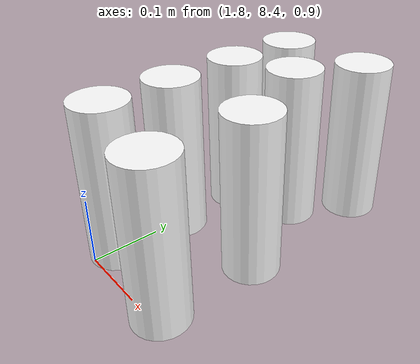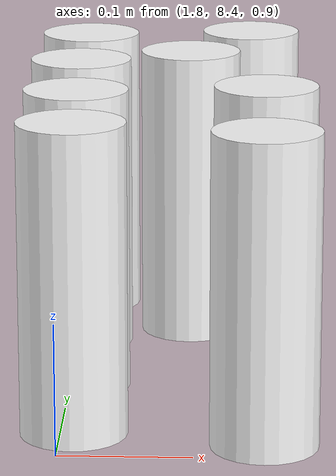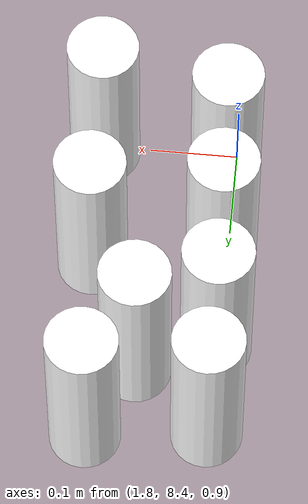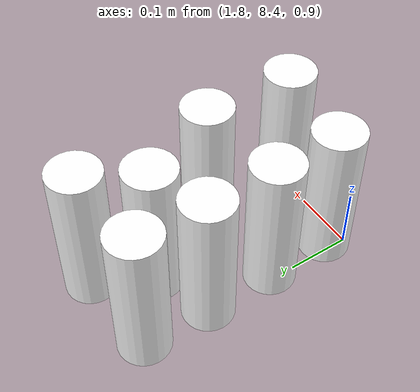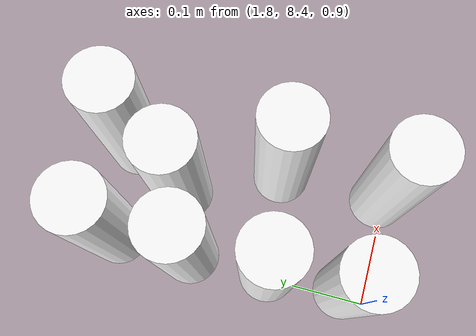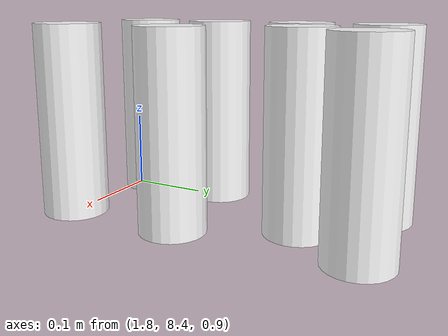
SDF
<sdf version="1.6">
 <world name="default">
  <model name="ground_plane">
   <static>1</static>
   <link name="link">
    <collision name="collision">
     <geometry><plane><normal>0 0 1</normal><size>100 100</size></plane></geometry>
     <surface><friction><ode><mu>100</mu><mu2>50</mu2></ode></friction></surface>
    </collision>
    <visual name="visual">
     <cast_shadows>0</cast_shadows>
     <geometry><plane><normal>0 0 1</normal><size>100 100</size></plane></geometry>
     <material>
      <script><uri>file://media/materials/scripts/gazebo.material</uri><name>Gazebo/Grey</name></script>
     </material>
    </visual>
   </link>
  </model>
  <model name="pringles2_clone_2">
   <link name="link">
    <inertial>
     <mass>0.25</mass>
     <inertia><ixx>0</ixx><ixy>0</ixy><ixz>0</ixz><iyy>0</iyy><iyz>0</iyz><izz>0</izz></inertia>
    </inertial>
    <velocity_decay><linear>0</linear><angular>0</angular></velocity_decay>
    <visual name="visual">
     <pose>0 0 0.12 -3.14159 0 0</pose>
     <geometry><cylinder><radius>0.04</radius><length>0.235</length></cylinder></geometry>
     <material>
      <script>
       <uri>model://pringles2/material/scripts</uri>
       <uri>model://pringles2/material/textures</uri>
       <name>Custom/pringles2</name>
      </script>
      <shader type="pixel"/>
      <ambient>1 1 1 1</ambient>
      <diffuse>1 1 1 1</diffuse>
      <specular>0 0 0 1</specular>
      <emissive>0 0 0 1</emissive>
     </material>
    </visual>
    <collision name="collision">
     <pose>0 0 0.12 -3.14159 0 0</pose>
     <geometry><cylinder><radius>0.04</radius><length>0.235</length></cylinder></geometry>
     <surface>
      <friction>
       <ode><mu>1</mu><mu2>1</mu2><fdir1>0 0 0</fdir1><slip1>0</slip1><slip2>0</slip2></ode>
       <torsional>
        <coefficient>1</coefficient>
        <patch_radius>0</patch_radius>
        <surface_radius>0</surface_radius>
        <use_patch_radius>1</use_patch_radius>
        <ode><slip>0</slip></ode>
       </torsional>
      </friction>
      <bounce><restitution_coefficient>0</restitution_coefficient><threshold>1e+06</threshold></bounce>
      <contact>
       <collide_without_contact>0</collide_without_contact>
       <collide_without_contact_bitmask>1</collide_without_contact_bitmask>
       <collide_bitmask>1</collide_bitmask>
       <ode>
        <soft_cfm>0</soft_cfm>
        <soft_erp>0.2</soft_erp>
        <kp>1e+13</kp>
        <kd>1</kd>
        <max_vel>0.01</max_vel>
        <min_depth>0</min_depth>
       </ode>
       <bullet>
        <split_impulse>1</split_impulse>
        <split_impulse_penetration_threshold>-0.01</split_impulse_penetration_threshold>
        <soft_cfm>0</soft_cfm>
        <soft_erp>0.2</soft_erp>
        <kp>1e+13</kp>
        <kd>1</kd>
       </bullet>
      </contact>
     </surface>
    </collision>
   </link>
   <static>1</static>
   <pose>1.81132 8.43253 0.9037 0 -0 0</pose>
  </model>
  <model name="pringles2_clone_3">
   <link name="link">
    <inertial>
     <mass>0.25</mass>
     <inertia><ixx>0</ixx><ixy>0</ixy><ixz>0</ixz><iyy>0</iyy><iyz>0</iyz><izz>0</izz></inertia>
    </inertial>
    <velocity_decay><linear>0</linear><angular>0</angular></velocity_decay>
    <visual name="visual">
     <pose>0 0 0.12 -3.14159 0 0</pose>
     <geometry><cylinder><radius>0.04</radius><length>0.235</length></cylinder></geometry>
     <material>
      <script>
       <uri>model://pringles2/material/scripts</uri>
       <uri>model://pringles2/material/textures</uri>
       <name>Custom/pringles2</name>
      </script>
      <shader type="pixel"/>
      <ambient>1 1 1 1</ambient>
      <diffuse>1 1 1 1</diffuse>
      <specular>0 0 0 1</specular>
      <emissive>0 0 0 1</emissive>
     </material>
    </visual>
    <collision name="collision">
     <pose>0 0 0.12 -3.14159 0 0</pose>
     <geometry><cylinder><radius>0.04</radius><length>0.235</length></cylinder></geometry>
     <surface>
      <friction>
       <ode><mu>1</mu><mu2>1</mu2><fdir1>0 0 0</fdir1><slip1>0</slip1><slip2>0</slip2></ode>
       <torsional>
        <coefficient>1</coefficient>
        <patch_radius>0</patch_radius>
        <surface_radius>0</surface_radius>
        <use_patch_radius>1</use_patch_radius>
        <ode><slip>0</slip></ode>
       </torsional>
      </friction>
      <bounce><restitution_coefficient>0</restitution_coefficient><threshold>1e+06</threshold></bounce>
      <contact>
       <collide_without_contact>0</collide_without_contact>
       <collide_without_contact_bitmask>1</collide_without_contact_bitmask>
       <collide_bitmask>1</collide_bitmask>
       <ode>
        <soft_cfm>0</soft_cfm>
        <soft_erp>0.2</soft_erp>
        <kp>1e+13</kp>
        <kd>1</kd>
        <max_vel>0.01</max_vel>
        <min_depth>0</min_depth>
       </ode>
       <bullet>
        <split_impulse>1</split_impulse>
        <split_impulse_penetration_threshold>-0.01</split_impulse_penetration_threshold>
        <soft_cfm>0</soft_cfm>
        <soft_erp>0.2</soft_erp>
        <kp>1e+13</kp>
        <kd>1</kd>
       </bullet>
      </contact>
     </surface>
    </collision>
   </link>
   <static>1</static>
   <pose>1.8074 8.53924 0.9037 0 -0 0</pose>
  </model>
  <model name="pringles2_clone_4">
   <link name="link">
    <inertial>
     <mass>0.25</mass>
     <inertia><ixx>0</ixx><ixy>0</ixy><ixz>0</ixz><iyy>0</iyy><iyz>0</iyz><izz>0</izz></inertia>
    </inertial>
    <velocity_decay><linear>0</linear><angular>0</angular></velocity_decay>
    <visual name="visual">
     <pose>0 0 0.12 -3.14159 0 0</pose>
     <geometry><cylinder><radius>0.04</radius><length>0.235</length></cylinder></geometry>
     <material>
      <script>
       <uri>model://pringles2/material/scripts</uri>
       <uri>model://pringles2/material/textures</uri>
       <name>Custom/pringles2</name>
      </script>
      <shader type="pixel"/>
      <ambient>1 1 1 1</ambient>
      <diffuse>1 1 1 1</diffuse>
      <specular>0 0 0 1</specular>
      <emissive>0 0 0 1</emissive>
     </material>
    </visual>
    <collision name="collision">
     <pose>0 0 0.12 -3.14159 0 0</pose>
     <geometry><cylinder><radius>0.04</radius><length>0.235</length></cylinder></geometry>
     <surface>
      <friction>
       <ode><mu>1</mu><mu2>1</mu2><fdir1>0 0 0</fdir1><slip1>0</slip1><slip2>0</slip2></ode>
       <torsional>
        <coefficient>1</coefficient>
        <patch_radius>0</patch_radius>
        <surface_radius>0</surface_radius>
        <use_patch_radius>1</use_patch_radius>
        <ode><slip>0</slip></ode>
       </torsional>
      </friction>
      <bounce><restitution_coefficient>0</restitution_coefficient><threshold>1e+06</threshold></bounce>
      <contact>
       <collide_without_contact>0</collide_without_contact>
       <collide_without_contact_bitmask>1</collide_without_contact_bitmask>
       <collide_bitmask>1</collide_bitmask>
       <ode>
        <soft_cfm>0</soft_cfm>
        <soft_erp>0.2</soft_erp>
        <kp>1e+13</kp>
        <kd>1</kd>
        <max_vel>0.01</max_vel>
        <min_depth>0</min_depth>
       </ode>
       <bullet>
        <split_impulse>1</split_impulse>
        <split_impulse_penetration_threshold>-0.01</split_impulse_penetration_threshold>
        <soft_cfm>0</soft_cfm>
        <soft_erp>0.2</soft_erp>
        <kp>1e+13</kp>
        <kd>1</kd>
       </bullet>
      </contact>
     </surface>
    </collision>
   </link>
   <static>1</static>
   <pose>1.80391 8.65109 0.9037 0 -0 0</pose>
  </model>
  <model name="pringles2_clone_5">
   <link name="link">
    <inertial>
     <mass>0.25</mass>
     <inertia><ixx>0</ixx><ixy>0</ixy><ixz>0</ixz><iyy>0</iyy><iyz>0</iyz><izz>0</izz></inertia>
    </inertial>
    <velocity_decay><linear>0</linear><angular>0</angular></velocity_decay>
    <visual name="visual">
     <pose>0 0 0.12 -3.14159 0 0</pose>
     <geometry><cylinder><radius>0.04</radius><length>0.235</length></cylinder></geometry>
     <material>
      <script>
       <uri>model://pringles2/material/scripts</uri>
       <uri>model://pringles2/material/textures</uri>
       <name>Custom/pringles2</name>
      </script>
      <shader type="pixel"/>
      <ambient>1 1 1 1</ambient>
      <diffuse>1 1 1 1</diffuse>
      <specular>0 0 0 1</specular>
      <emissive>0 0 0 1</emissive>
     </material>
    </visual>
    <collision name="collision">
     <pose>0 0 0.12 -3.14159 0 0</pose>
     <geometry><cylinder><radius>0.04</radius><length>0.235</length></cylinder></geometry>
     <surface>
      <friction>
       <ode><mu>1</mu><mu2>1</mu2><fdir1>0 0 0</fdir1><slip1>0</slip1><slip2>0</slip2></ode>
       <torsional>
        <coefficient>1</coefficient>
        <patch_radius>0</patch_radius>
        <surface_radius>0</surface_radius>
        <use_patch_radius>1</use_patch_radius>
        <ode><slip>0</slip></ode>
       </torsional>
      </friction>
      <bounce><restitution_coefficient>0</restitution_coefficient><threshold>1e+06</threshold></bounce>
      <contact>
       <collide_without_contact>0</collide_without_contact>
       <collide_without_contact_bitmask>1</collide_without_contact_bitmask>
       <collide_bitmask>1</collide_bitmask>
       <ode>
        <soft_cfm>0</soft_cfm>
        <soft_erp>0.2</soft_erp>
        <kp>1e+13</kp>
        <kd>1</kd>
        <max_vel>0.01</max_vel>
        <min_depth>0</min_depth>
       </ode>
       <bullet>
        <split_impulse>1</split_impulse>
        <split_impulse_penetration_threshold>-0.01</split_impulse_penetration_threshold>
        <soft_cfm>0</soft_cfm>
        <soft_erp>0.2</soft_erp>
        <kp>1e+13</kp>
        <kd>1</kd>
       </bullet>
      </contact>
     </surface>
    </collision>
   </link>
   <static>1</static>
   <pose>1.80522 8.75711 0.9037 0 -0 0</pose>
  </model>
  <model name="pringles2_clone_6">
   <link name="link">
    <inertial>
     <mass>0.25</mass>
     <inertia><ixx>0</ixx><ixy>0</ixy><ixz>0</ixz><iyy>0</iyy><iyz>0</iyz><izz>0</izz></inertia>
    </inertial>
    <velocity_decay><linear>0</linear><angular>0</angular></velocity_decay>
    <visual name="visual">
     <pose>0 0 0.12 -3.14159 0 0</pose>
     <geometry><cylinder><radius>0.04</radius><length>0.235</length></cylinder></geometry>
     <material>
      <script>
       <uri>model://pringles2/material/scripts</uri>
       <uri>model://pringles2/material/textures</uri>
       <name>Custom/pringles2</name>
      </script>
      <shader type="pixel"/>
      <ambient>1 1 1 1</ambient>
      <diffuse>1 1 1 1</diffuse>
      <specular>0 0 0 1</specular>
      <emissive>0 0 0 1</emissive>
     </material>
    </visual>
    <collision name="collision">
     <pose>0 0 0.12 -3.14159 0 0</pose>
     <geometry><cylinder><radius>0.04</radius><length>0.235</length></cylinder></geometry>
     <surface>
      <friction>
       <ode><mu>1</mu><mu2>1</mu2><fdir1>0 0 0</fdir1><slip1>0</slip1><slip2>0</slip2></ode>
       <torsional>
        <coefficient>1</coefficient>
        <patch_radius>0</patch_radius>
        <surface_radius>0</surface_radius>
        <use_patch_radius>1</use_patch_radius>
        <ode><slip>0</slip></ode>
       </torsional>
      </friction>
      <bounce><restitution_coefficient>0</restitution_coefficient><threshold>1e+06</threshold></bounce>
      <contact>
       <collide_without_contact>0</collide_without_contact>
       <collide_without_contact_bitmask>1</collide_without_contact_bitmask>
       <collide_bitmask>1</collide_bitmask>
       <ode>
        <soft_cfm>0</soft_cfm>
        <soft_erp>0.2</soft_erp>
        <kp>1e+13</kp>
        <kd>1</kd>
        <max_vel>0.01</max_vel>
        <min_depth>0</min_depth>
       </ode>
       <bullet>
        <split_impulse>1</split_impulse>
        <split_impulse_penetration_threshold>-0.01</split_impulse_penetration_threshold>
        <soft_cfm>0</soft_cfm>
        <soft_erp>0.2</soft_erp>
        <kp>1e+13</kp>
        <kd>1</kd>
       </bullet>
      </contact>
     </surface>
    </collision>
   </link>
   <static>1</static>
   <pose>1.89059 8.68502 0.9037 0 -0 0</pose>
  </model>
  <model name="pringles2_clone_7">
   <link name="link">
    <inertial>
     <mass>0.25</mass>
     <inertia><ixx>0</ixx><ixy>0</ixy><ixz>0</ixz><iyy>0</iyy><iyz>0</iyz><izz>0</izz></inertia>
    </inertial>
    <velocity_decay><linear>0</linear><angular>0</angular></velocity_decay>
    <visual name="visual">
     <pose>0 0 0.12 -3.14159 0 0</pose>
     <geometry><cylinder><radius>0.04</radius><length>0.235</length></cylinder></geometry>
     <material>
      <script>
       <uri>model://pringles2/material/scripts</uri>
       <uri>model://pringles2/material/textures</uri>
       <name>Custom/pringles2</name>
      </script>
      <shader type="pixel"/>
      <ambient>1 1 1 1</ambient>
      <diffuse>1 1 1 1</diffuse>
      <specular>0 0 0 1</specular>
      <emissive>0 0 0 1</emissive>
     </material>
    </visual>
    <collision name="collision">
     <pose>0 0 0.12 -3.14159 0 0</pose>
     <geometry><cylinder><radius>0.04</radius><length>0.235</length></cylinder></geometry>
     <surface>
      <friction>
       <ode><mu>1</mu><mu2>1</mu2><fdir1>0 0 0</fdir1><slip1>0</slip1><slip2>0</slip2></ode>
       <torsional>
        <coefficient>1</coefficient>
        <patch_radius>0</patch_radius>
        <surface_radius>0</surface_radius>
        <use_patch_radius>1</use_patch_radius>
        <ode><slip>0</slip></ode>
       </torsional>
      </friction>
      <bounce><restitution_coefficient>0</restitution_coefficient><threshold>1e+06</threshold></bounce>
      <contact>
       <collide_without_contact>0</collide_without_contact>
       <collide_without_contact_bitmask>1</collide_without_contact_bitmask>
       <collide_bitmask>1</collide_bitmask>
       <ode>
        <soft_cfm>0</soft_cfm>
        <soft_erp>0.2</soft_erp>
        <kp>1e+13</kp>
        <kd>1</kd>
        <max_vel>0.01</max_vel>
        <min_depth>0</min_depth>
       </ode>
       <bullet>
        <split_impulse>1</split_impulse>
        <split_impulse_penetration_threshold>-0.01</split_impulse_penetration_threshold>
        <soft_cfm>0</soft_cfm>
        <soft_erp>0.2</soft_erp>
        <kp>1e+13</kp>
        <kd>1</kd>
       </bullet>
      </contact>
     </surface>
    </collision>
   </link>
   <static>1</static>
   <pose>1.95143 8.55568 0.9037 0 -0 0</pose>
  </model>
  <model name="pringles2_clone_8">
   <link name="link">
    <inertial>
     <mass>0.25</mass>
     <inertia><ixx>0</ixx><ixy>0</ixy><ixz>0</ixz><iyy>0</iyy><iyz>0</iyz><izz>0</izz></inertia>
    </inertial>
    <velocity_decay><linear>0</linear><angular>0</angular></velocity_decay>
    <visual name="visual">
     <pose>0 0 0.12 -3.14159 0 0</pose>
     <geometry><cylinder><radius>0.04</radius><length>0.235</length></cylinder></geometry>
     <material>
      <script>
       <uri>model://pringles2/material/scripts</uri>
       <uri>model://pringles2/material/textures</uri>
       <name>Custom/pringles2</name>
      </script>
      <shader type="pixel"/>
      <ambient>1 1 1 1</ambient>
      <diffuse>1 1 1 1</diffuse>
      <specular>0 0 0 1</specular>
      <emissive>0 0 0 1</emissive>
     </material>
    </visual>
    <collision name="collision">
     <pose>0 0 0.12 -3.14159 0 0</pose>
     <geometry><cylinder><radius>0.04</radius><length>0.235</length></cylinder></geometry>
     <surface>
      <friction>
       <ode><mu>1</mu><mu2>1</mu2><fdir1>0 0 0</fdir1><slip1>0</slip1><slip2>0</slip2></ode>
       <torsional>
        <coefficient>1</coefficient>
        <patch_radius>0</patch_radius>
        <surface_radius>0</surface_radius>
        <use_patch_radius>1</use_patch_radius>
        <ode><slip>0</slip></ode>
       </torsional>
      </friction>
      <bounce><restitution_coefficient>0</restitution_coefficient><threshold>1e+06</threshold></bounce>
      <contact>
       <collide_without_contact>0</collide_without_contact>
       <collide_without_contact_bitmask>1</collide_without_contact_bitmask>
       <collide_bitmask>1</collide_bitmask>
       <ode>
        <soft_cfm>0</soft_cfm>
        <soft_erp>0.2</soft_erp>
        <kp>1e+13</kp>
        <kd>1</kd>
        <max_vel>0.01</max_vel>
        <min_depth>0</min_depth>
       </ode>
       <bullet>
        <split_impulse>1</split_impulse>
        <split_impulse_penetration_threshold>-0.01</split_impulse_penetration_threshold>
        <soft_cfm>0</soft_cfm>
        <soft_erp>0.2</soft_erp>
        <kp>1e+13</kp>
        <kd>1</kd>
       </bullet>
      </contact>
     </surface>
    </collision>
   </link>
   <static>1</static>
   <pose>1.95148 8.41062 0.9037 0 -0 0</pose>
  </model>
  <model name="pringles2_clone_12">
   <link name="link">
    <inertial>
     <mass>0.25</mass>
     <inertia><ixx>0</ixx><ixy>0</ixy><ixz>0</ixz><iyy>0</iyy><iyz>0</iyz><izz>0</izz></inertia>
    </inertial>
    <velocity_decay><linear>0</linear><angular>0</angular></velocity_decay>
    <visual name="visual">
     <pose>0 0 0.12 -3.14159 0 0</pose>
     <geometry><cylinder><radius>0.04</radius><length>0.235</length></cylinder></geometry>
     <material>
      <script>
       <uri>model://pringles2/material/scripts</uri>
       <uri>model://pringles2/material/textures</uri>
       <name>Custom/pringles2</name>
      </script>
      <shader type="pixel"/>
      <ambient>1 1 1 1</ambient>
      <diffuse>1 1 1 1</diffuse>
      <specular>0 0 0 1</specular>
      <emissive>0 0 0 1</emissive>
     </material>
    </visual>
    <collision name="collision">
     <pose>0 0 0.12 -3.14159 0 0</pose>
     <geometry><cylinder><radius>0.04</radius><length>0.235</length></cylinder></geometry>
     <surface>
      <friction>
       <ode><mu>1</mu><mu2>1</mu2><fdir1>0 0 0</fdir1><slip1>0</slip1><slip2>0</slip2></ode>
       <torsional>
        <coefficient>1</coefficient>
        <patch_radius>0</patch_radius>
        <surface_radius>0</surface_radius>
        <use_patch_radius>1</use_patch_radius>
        <ode><slip>0</slip></ode>
       </torsional>
      </friction>
      <bounce><restitution_coefficient>0</restitution_coefficient><threshold>1e+06</threshold></bounce>
      <contact>
       <collide_without_contact>0</collide_without_contact>
       <collide_without_contact_bitmask>1</collide_without_contact_bitmask>
       <collide_bitmask>1</collide_bitmask>
       <ode>
        <soft_cfm>0</soft_cfm>
        <soft_erp>0.2</soft_erp>
        <kp>1e+13</kp>
        <kd>1</kd>
        <max_vel>0.01</max_vel>
        <min_depth>0</min_depth>
       </ode>
       <bullet>
        <split_impulse>1</split_impulse>
        <split_impulse_penetration_threshold>-0.01</split_impulse_penetration_threshold>
        <soft_cfm>0</soft_cfm>
        <soft_erp>0.2</soft_erp>
        <kp>1e+13</kp>
        <kd>1</kd>
       </bullet>
      </contact>
     </surface>
    </collision>
   </link>
   <static>1</static>
   <pose>1.93891 8.77 0.9037 0 -0 0</pose>
  </model>
 </world>
</sdf>
